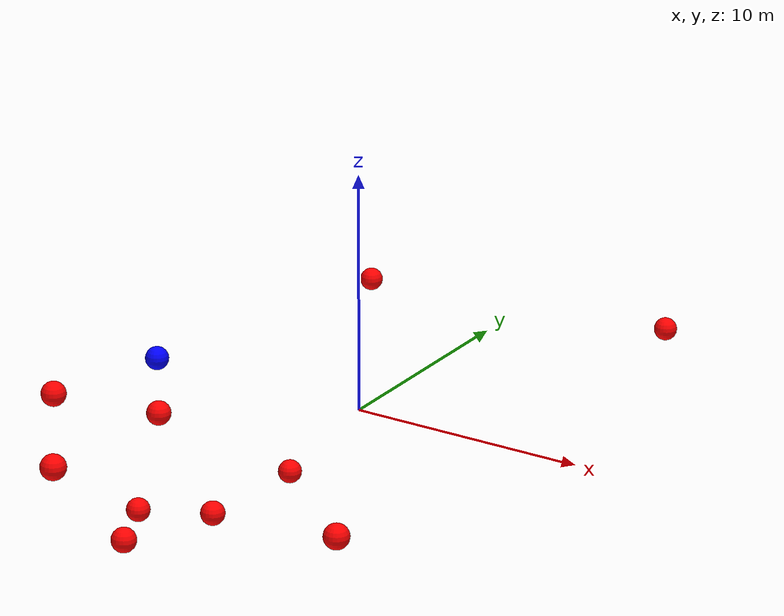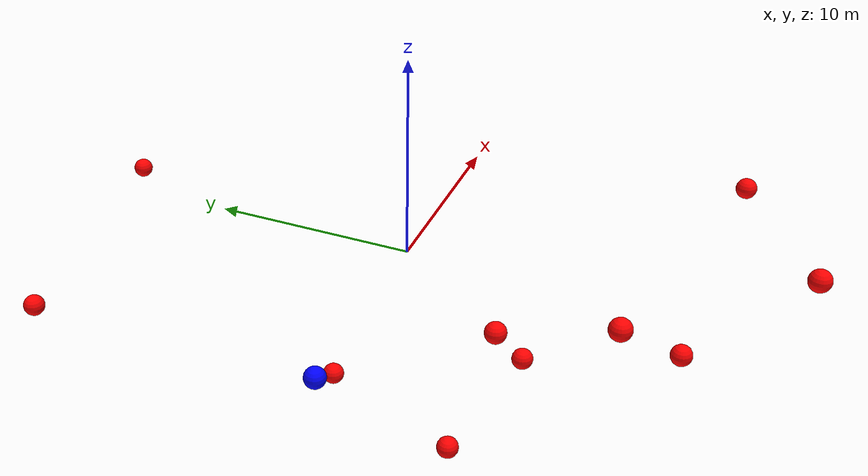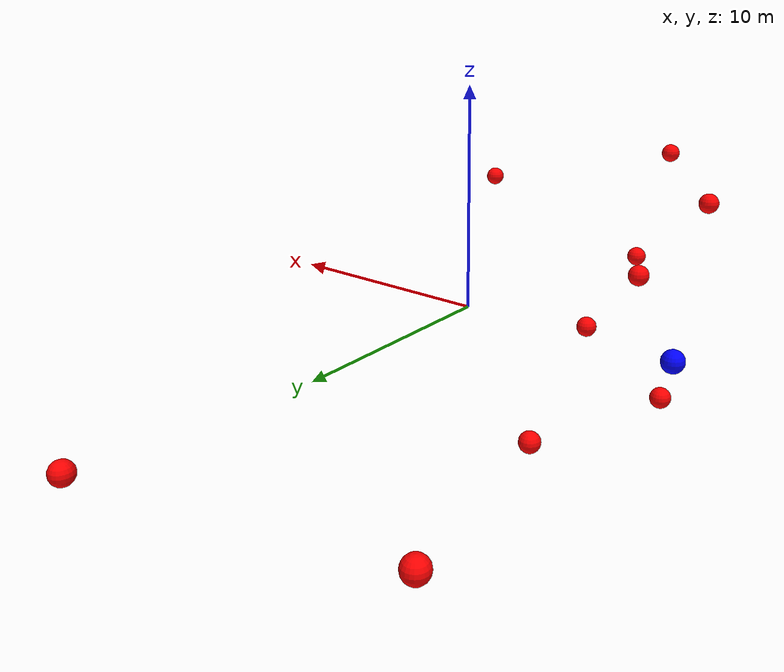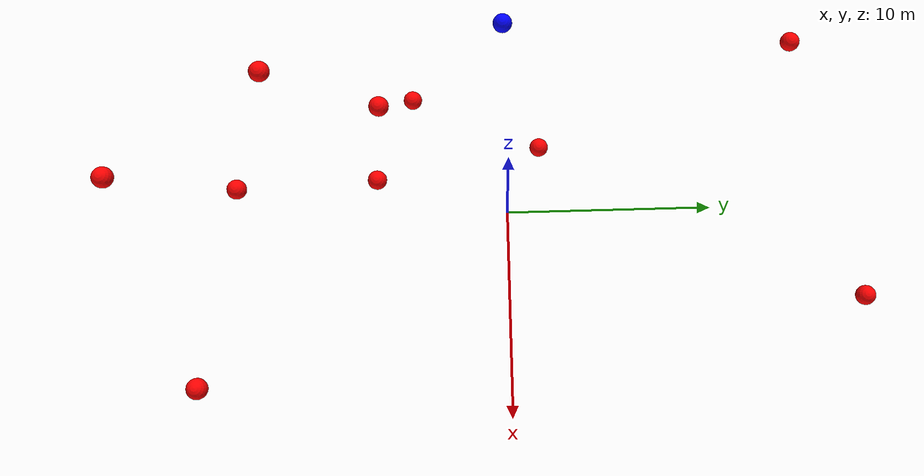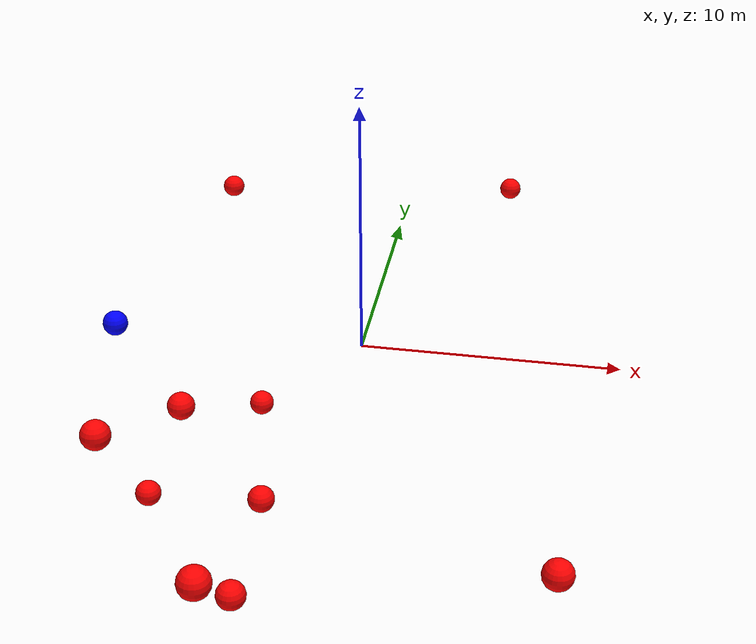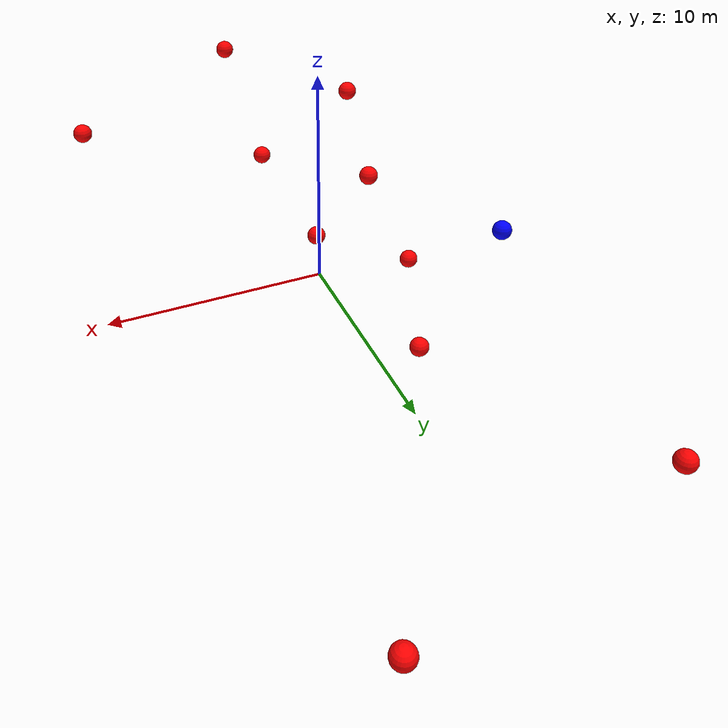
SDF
<?xml version="1.0" ?>
<sdf version="1.8">
    <world name="3d_world">
        <physics name="1ms" type="ode">
            <max_step_size>0.001</max_step_size>
            <real_time_factor>1.0</real_time_factor>
            <real_time_update_rate>1000.0</real_time_update_rate>
        </physics>
        <gravity>0 0 0</gravity>

        <plugin
            filename="gz-sim-physics-system"
            name="gz::sim::v8::systems::Physics">
        </plugin>
        <plugin
            filename="libignition-gazebo-user-commands-system.so"
            name="ignition::gazebo::systems::UserCommands">
        </plugin>
        <plugin
            filename="gz-sim-scene-broadcaster-system"
            name="gz::sim::systems::SceneBroadcaster">
        </plugin>
        <plugin
            filename="gz-sim-sensors-system"
            name="gz::sim::systems::Sensors">
            <render_engine>ogre2</render_engine>
        </plugin>

        <light type="directional" name="sun">
            <cast_shadows>true</cast_shadows>
            <pose>0 0 10 0 0 0</pose>
            <diffuse>0.8 0.8 0.8 1</diffuse>
            <specular>0.2 0.2 0.2 1</specular>
            <attenuation>
                <range>1000</range>
                <constant>0.9</constant>
                <linear>0.01</linear>
                <quadratic>0.001</quadratic>
            </attenuation>
            <direction>-0.5 0.1 -0.9</direction>
        </light>

        <!-- AGENTE -->
        <model name='agente' canonical_link='chassis'>
            <pose relative_to='world'>-10.0 0 0.0 0 0 0</pose>
            <link name='chassis'>
                <pose relative_to='__model__'>0.0 0 0.0 0 0 0</pose>
                <inertial>
                    <mass>1.14395</mass>
                    <inertia>
                        <ixx>0.095329</ixx>
                        <ixy>0</ixy>
                        <ixz>0</ixz>
                        <iyy>0.381317</iyy>
                        <iyz>0</iyz>
                        <izz>0.476646</izz>
                    </inertia>
                </inertial>
                <visual name='visual'>
                    <geometry>
                        <sphere>
                            <radius>0.5</radius>
                        </sphere>
                    </geometry>
                    <material>
                        <ambient>0.0 0.0 1.0 1</ambient>
                        <diffuse>0.0 0.0 1.0 1</diffuse>
                        <specular>0.0 0.0 1.0 1</specular>
                    </material>
                </visual>
                <collision name='collision'>
                    <geometry>
                        <sphere>
                            <radius>0.5</radius>
                        </sphere>
                    </geometry>
                </collision>
                <enable_gravity>false</enable_gravity>
            </link>

            <link name='lidar_link'>
                <pose relative_to='chassis'>0.0 0 0.1 0 0 0</pose>
                <inertial>
                    <mass>0.1</mass>
                    <inertia>
                        <ixx>0.000166667</ixx>
                        <iyy>0.000166667</iyy>
                        <izz>0.000166667</izz>
                    </inertia>
                </inertial>
                <collision name='collision'>
                    <geometry>
                        <cylinder>
                            <radius>0.05</radius>
                            <length>0.1</length>
                        </cylinder>
                    </geometry>
                </collision>
                <visual name='visual'>
                    <geometry>
                        <cylinder>
                            <radius>0.05</radius>
                            <length>0.1</length>
                        </cylinder>
                    </geometry>
                    <material>
                        <ambient>0.0 1.0 0.0 1</ambient>
                        <diffuse>0.0 1.0 0.0 1</diffuse>
                        <specular>0.0 1.0 0.0 1</specular>
                    </material>
                </visual>
                <sensor name="lidar" type="gpu_lidar">
                    <topic>scan</topic>
                    <update_rate>10</update_rate>
                    <lidar>
                        <scan>
                            <horizontal>
                                <samples>5000</samples>
                                <resolution>1</resolution>
                                <min_angle>-3.14159</min_angle>
                                <max_angle>3.14159</max_angle>
                            </horizontal>
                        </scan>
                        <range>
                            <min>0.1</min>
                            <max>10.0</max>
                            <resolution>0.01</resolution>
                        </range>
                    </lidar>
                    <visualize>true</visualize>
                    <always_on>true</always_on>
                    <update_rate>10</update_rate>
                    <pose_frame>lidar</pose_frame>
                </sensor>
                <enable_gravity>false</enable_gravity>
            </link>

            <joint name="lidar_joint" type="fixed">
                <parent>chassis</parent>
                <child>lidar_link</child>
            </joint>

            <plugin
                filename="ignition-gazebo-joint-state-publisher-system"
                name="ignition::gazebo::systems::JointStatePublisher">
            </plugin>
            <plugin
                filename="ignition-gazebo-odometry-publisher-system"
                name="ignition::gazebo::systems::OdometryPublisher">
                <dimensions>3</dimensions>
            </plugin>
            <plugin
                filename="ignition-gazebo-velocity-control-system"
                name="ignition::gazebo::systems::VelocityControl">
                <initial_linear>0.0 0 0</initial_linear>
                <initial_angular>0 0 0.0</initial_angular>
            </plugin>
            <plugin
                filename="libignition-gazebo-pose-publisher-system.so"
                name="ignition::gazebo::systems::PosePublisher">
                <topic>/agente/pose</topic>
                <frame_id>agente</frame_id>
                <update_rate>30</update_rate>
            </plugin>
        </model>

        <!-- OBSTACLE 1 -->
        <model name='obstacle_1' canonical_link='obstacle'>
            <static>false</static>
            <pose relative_to='world'>-6.37 -11.61 3.43 0 0 0</pose>
            <link name='obstacle'>
                <pose relative_to='__model__'>0.0 0 0.0 0 0 0</pose>
                <visual name='visual'>
                    <geometry>
                        <sphere>
                            <radius>0.50</radius>
                        </sphere>
                    </geometry>
                    <material>
                        <ambient>1.0 0.0 0.0 1</ambient>
                        <diffuse>1.0 0.0 0.0 1</diffuse>
                        <specular>1.0 0.0 0.0 1</specular>
                    </material>
                </visual>
                <collision name='collision'>
                    <geometry>
                        <sphere>
                            <radius>0.50</radius>
                        </sphere>
                    </geometry>
                </collision>
                <enable_gravity>false</enable_gravity>
            </link>

            <plugin
                filename="ignition-gazebo-velocity-control-system"
                name="ignition::gazebo::systems::VelocityControl">
                <initial_linear>1.14 1.58 -0.47</initial_linear>
                <initial_angular>0 0 0</initial_angular>
            </plugin>

            <plugin
                filename="ignition-gazebo-odometry-publisher-system"
                name="ignition::gazebo::systems::OdometryPublisher">
                <dimensions>3</dimensions>
            </plugin>
        </model>

        <!-- OBSTACLE 2 -->
        <model name='obstacle_2' canonical_link='obstacle'>
            <static>false</static>
            <pose relative_to='world'>4.32 17.91 -1.69 0 0 0</pose>
            <link name='obstacle'>
                <pose relative_to='__model__'>0.0 0 0.0 0 0 0</pose>
                <visual name='visual'>
                    <geometry>
                        <sphere>
                            <radius>0.50</radius>
                        </sphere>
                    </geometry>
                    <material>
                        <ambient>1.0 0.0 0.0 1</ambient>
                        <diffuse>1.0 0.0 0.0 1</diffuse>
                        <specular>1.0 0.0 0.0 1</specular>
                    </material>
                </visual>
                <collision name='collision'>
                    <geometry>
                        <sphere>
                            <radius>0.50</radius>
                        </sphere>
                    </geometry>
                </collision>
                <enable_gravity>false</enable_gravity>
            </link>

            <plugin
                filename="ignition-gazebo-velocity-control-system"
                name="ignition::gazebo::systems::VelocityControl">
                <initial_linear>-0.39 -1.95 0.18</initial_linear>
                <initial_angular>0 0 0</initial_angular>
            </plugin>

            <plugin
                filename="ignition-gazebo-odometry-publisher-system"
                name="ignition::gazebo::systems::OdometryPublisher">
                <dimensions>3</dimensions>
            </plugin>
        </model>

        <!-- OBSTACLE 3 -->
        <model name='obstacle_3' canonical_link='obstacle'>
            <static>false</static>
            <pose relative_to='world'>-7.44 -5.01 -4.33 0 0 0</pose>
            <link name='obstacle'>
                <pose relative_to='__model__'>0.0 0 0.0 0 0 0</pose>
                <visual name='visual'>
                    <geometry>
                        <sphere>
                            <radius>0.50</radius>
                        </sphere>
                    </geometry>
                    <material>
                        <ambient>1.0 0.0 0.0 1</ambient>
                        <diffuse>1.0 0.0 0.0 1</diffuse>
                        <specular>1.0 0.0 0.0 1</specular>
                    </material>
                </visual>
                <collision name='collision'>
                    <geometry>
                        <sphere>
                            <radius>0.50</radius>
                        </sphere>
                    </geometry>
                </collision>
                <enable_gravity>false</enable_gravity>
            </link>

            <plugin
                filename="ignition-gazebo-velocity-control-system"
                name="ignition::gazebo::systems::VelocityControl">
                <initial_linear>1.53 0.97 0.84</initial_linear>
                <initial_angular>0 0 0</initial_angular>
            </plugin>

            <plugin
                filename="ignition-gazebo-odometry-publisher-system"
                name="ignition::gazebo::systems::OdometryPublisher">
                <dimensions>3</dimensions>
            </plugin>
        </model>

        <!-- OBSTACLE 4 -->
        <model name='obstacle_4' canonical_link='obstacle'>
            <static>false</static>
            <pose relative_to='world'>-1.71 -13.61 -0.75 0 0 0</pose>
            <link name='obstacle'>
                <pose relative_to='__model__'>0.0 0 0.0 0 0 0</pose>
                <visual name='visual'>
                    <geometry>
                        <sphere>
                            <radius>0.50</radius>
                        </sphere>
                    </geometry>
                    <material>
                        <ambient>1.0 0.0 0.0 1</ambient>
                        <diffuse>1.0 0.0 0.0 1</diffuse>
                        <specular>1.0 0.0 0.0 1</specular>
                    </material>
                </visual>
                <collision name='collision'>
                    <geometry>
                        <sphere>
                            <radius>0.50</radius>
                        </sphere>
                    </geometry>
                </collision>
                <enable_gravity>false</enable_gravity>
            </link>

            <plugin
                filename="ignition-gazebo-velocity-control-system"
                name="ignition::gazebo::systems::VelocityControl">
                <initial_linear>-0.15 1.99 0.11</initial_linear>
                <initial_angular>0 0 0</initial_angular>
            </plugin>

            <plugin
                filename="ignition-gazebo-odometry-publisher-system"
                name="ignition::gazebo::systems::OdometryPublisher">
                <dimensions>3</dimensions>
            </plugin>
        </model>

        <!-- OBSTACLE 5 -->
        <model name='obstacle_5' canonical_link='obstacle'>
            <static>false</static>
            <pose relative_to='world'>8.34 -14.32 2.27 0 0 0</pose>
            <link name='obstacle'>
                <pose relative_to='__model__'>0.0 0 0.0 0 0 0</pose>
                <visual name='visual'>
                    <geometry>
                        <sphere>
                            <radius>0.50</radius>
                        </sphere>
                    </geometry>
                    <material>
                        <ambient>1.0 0.0 0.0 1</ambient>
                        <diffuse>1.0 0.0 0.0 1</diffuse>
                        <specular>1.0 0.0 0.0 1</specular>
                    </material>
                </visual>
                <collision name='collision'>
                    <geometry>
                        <sphere>
                            <radius>0.50</radius>
                        </sphere>
                    </geometry>
                </collision>
                <enable_gravity>false</enable_gravity>
            </link>

            <plugin
                filename="ignition-gazebo-velocity-control-system"
                name="ignition::gazebo::systems::VelocityControl">
                <initial_linear>-0.95 1.74 -0.28</initial_linear>
                <initial_angular>0 0 0</initial_angular>
            </plugin>

            <plugin
                filename="ignition-gazebo-odometry-publisher-system"
                name="ignition::gazebo::systems::OdometryPublisher">
                <dimensions>3</dimensions>
            </plugin>
        </model>

        <!-- OBSTACLE 6 -->
        <model name='obstacle_6' canonical_link='obstacle'>
            <static>false</static>
            <pose relative_to='world'>-5.36 -6.26 0.90 0 0 0</pose>
            <link name='obstacle'>
                <pose relative_to='__model__'>0.0 0 0.0 0 0 0</pose>
                <visual name='visual'>
                    <geometry>
                        <sphere>
                            <radius>0.50</radius>
                        </sphere>
                    </geometry>
                    <material>
                        <ambient>1.0 0.0 0.0 1</ambient>
                        <diffuse>1.0 0.0 0.0 1</diffuse>
                        <specular>1.0 0.0 0.0 1</specular>
                    </material>
                </visual>
                <collision name='collision'>
                    <geometry>
                        <sphere>
                            <radius>0.50</radius>
                        </sphere>
                    </geometry>
                </collision>
                <enable_gravity>false</enable_gravity>
            </link>

            <plugin
                filename="ignition-gazebo-velocity-control-system"
                name="ignition::gazebo::systems::VelocityControl">
                <initial_linear>0.42 1.94 -0.28</initial_linear>
                <initial_angular>0 0 0</initial_angular>
            </plugin>

            <plugin
                filename="ignition-gazebo-odometry-publisher-system"
                name="ignition::gazebo::systems::OdometryPublisher">
                <dimensions>3</dimensions>
            </plugin>
        </model>

        <!-- OBSTACLE 7 -->
        <model name='obstacle_7' canonical_link='obstacle'>
            <static>false</static>
            <pose relative_to='world'>-9.12 15.10 -1.27 0 0 0</pose>
            <link name='obstacle'>
                <pose relative_to='__model__'>0.0 0 0.0 0 0 0</pose>
                <visual name='visual'>
                    <geometry>
                        <sphere>
                            <radius>0.50</radius>
                        </sphere>
                    </geometry>
                    <material>
                        <ambient>1.0 0.0 0.0 1</ambient>
                        <diffuse>1.0 0.0 0.0 1</diffuse>
                        <specular>1.0 0.0 0.0 1</specular>
                    </material>
                </visual>
                <collision name='collision'>
                    <geometry>
                        <sphere>
                            <radius>0.50</radius>
                        </sphere>
                    </geometry>
                </collision>
                <enable_gravity>false</enable_gravity>
            </link>

            <plugin
                filename="ignition-gazebo-velocity-control-system"
                name="ignition::gazebo::systems::VelocityControl">
                <initial_linear>1.26 -1.55 0.13</initial_linear>
                <initial_angular>0 0 0</initial_angular>
            </plugin>

            <plugin
                filename="ignition-gazebo-odometry-publisher-system"
                name="ignition::gazebo::systems::OdometryPublisher">
                <dimensions>3</dimensions>
            </plugin>
        </model>

        <!-- OBSTACLE 8 -->
        <model name='obstacle_8' canonical_link='obstacle'>
            <static>false</static>
            <pose relative_to='world'>-2.49 -6.74 -2.55 0 0 0</pose>
            <link name='obstacle'>
                <pose relative_to='__model__'>0.0 0 0.0 0 0 0</pose>
                <visual name='visual'>
                    <geometry>
                        <sphere>
                            <radius>0.50</radius>
                        </sphere>
                    </geometry>
                    <material>
                        <ambient>1.0 0.0 0.0 1</ambient>
                        <diffuse>1.0 0.0 0.0 1</diffuse>
                        <specular>1.0 0.0 0.0 1</specular>
                    </material>
                </visual>
                <collision name='collision'>
                    <geometry>
                        <sphere>
                            <radius>0.50</radius>
                        </sphere>
                    </geometry>
                </collision>
                <enable_gravity>false</enable_gravity>
            </link>

            <plugin
                filename="ignition-gazebo-velocity-control-system"
                name="ignition::gazebo::systems::VelocityControl">
                <initial_linear>-0.18 1.86 0.71</initial_linear>
                <initial_angular>0 0 0</initial_angular>
            </plugin>

            <plugin
                filename="ignition-gazebo-odometry-publisher-system"
                name="ignition::gazebo::systems::OdometryPublisher">
                <dimensions>3</dimensions>
            </plugin>
        </model>

        <!-- OBSTACLE 9 -->
        <model name='obstacle_9' canonical_link='obstacle'>
            <static>false</static>
            <pose relative_to='world'>-4.64 1.85 -4.56 0 0 0</pose>
            <link name='obstacle'>
                <pose relative_to='__model__'>0.0 0 0.0 0 0 0</pose>
                <visual name='visual'>
                    <geometry>
                        <sphere>
                            <radius>0.50</radius>
                        </sphere>
                    </geometry>
                    <material>
                        <ambient>1.0 0.0 0.0 1</ambient>
                        <diffuse>1.0 0.0 0.0 1</diffuse>
                        <specular>1.0 0.0 0.0 1</specular>
                    </material>
                </visual>
                <collision name='collision'>
                    <geometry>
                        <sphere>
                            <radius>0.50</radius>
                        </sphere>
                    </geometry>
                </collision>
                <enable_gravity>false</enable_gravity>
            </link>

            <plugin
                filename="ignition-gazebo-velocity-control-system"
                name="ignition::gazebo::systems::VelocityControl">
                <initial_linear>1.25 -0.43 1.06</initial_linear>
                <initial_angular>0 0 0</initial_angular>
            </plugin>

            <plugin
                filename="ignition-gazebo-odometry-publisher-system"
                name="ignition::gazebo::systems::OdometryPublisher">
                <dimensions>3</dimensions>
            </plugin>
        </model>

        <!-- OBSTACLE 10 -->
        <model name='obstacle_10' canonical_link='obstacle'>
            <static>false</static>
            <pose relative_to='world'>-1.17 -18.39 4.21 0 0 0</pose>
            <link name='obstacle'>
                <pose relative_to='__model__'>0.0 0 0.0 0 0 0</pose>
                <visual name='visual'>
                    <geometry>
                        <sphere>
                            <radius>0.50</radius>
                        </sphere>
                    </geometry>
                    <material>
                        <ambient>1.0 0.0 0.0 1</ambient>
                        <diffuse>1.0 0.0 0.0 1</diffuse>
                        <specular>1.0 0.0 0.0 1</specular>
                    </material>
                </visual>
                <collision name='collision'>
                    <geometry>
                        <sphere>
                            <radius>0.50</radius>
                        </sphere>
                    </geometry>
                </collision>
                <enable_gravity>false</enable_gravity>
            </link>

            <plugin
                filename="ignition-gazebo-velocity-control-system"
                name="ignition::gazebo::systems::VelocityControl">
                <initial_linear>0.70 1.83 -0.42</initial_linear>
                <initial_angular>0 0 0</initial_angular>
            </plugin>

            <plugin
                filename="ignition-gazebo-odometry-publisher-system"
                name="ignition::gazebo::systems::OdometryPublisher">
                <dimensions>3</dimensions>
            </plugin>
        </model>

    </world>
</sdf>
